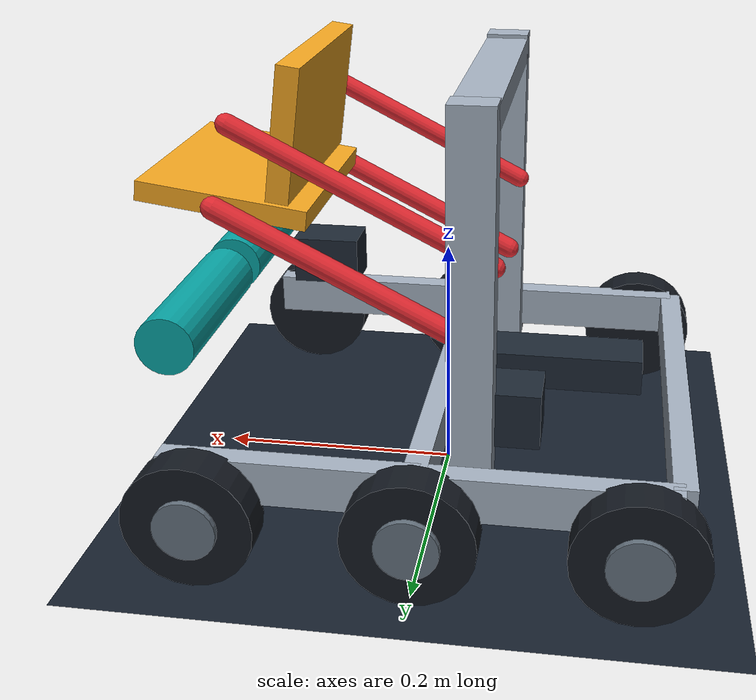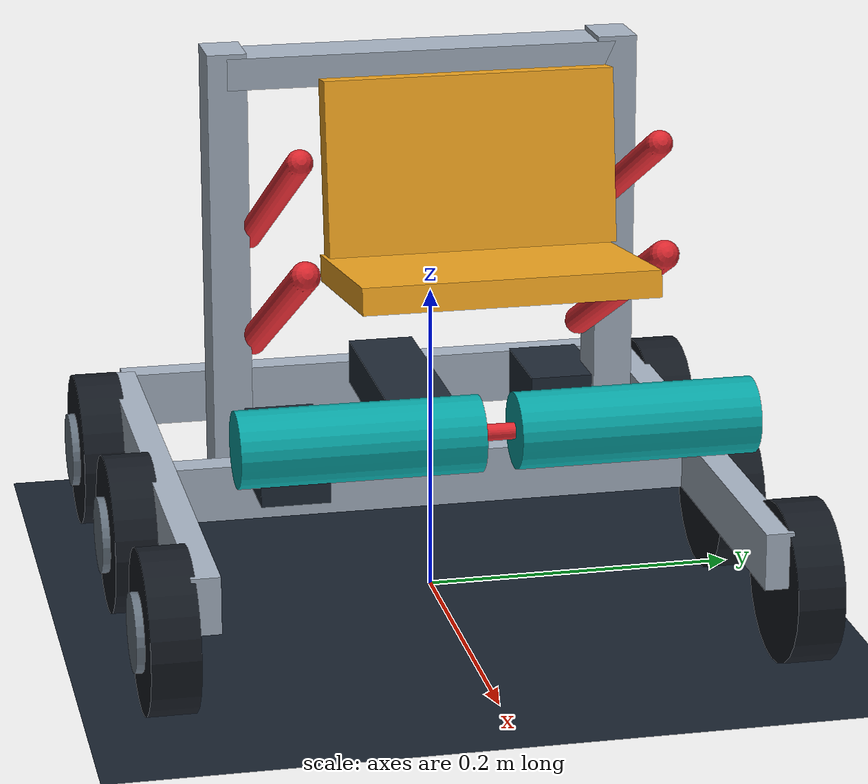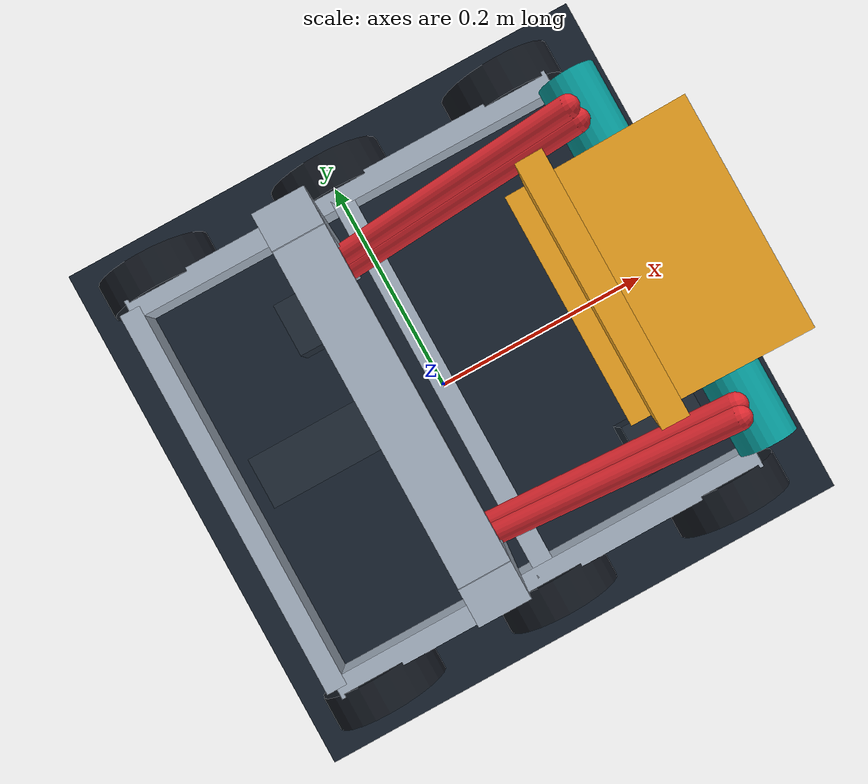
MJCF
<mujoco model="Open-Bay Four-Bar Pin Cradle"><compiler angle="degree" /><visual><global offwidth="800" offheight="600" /><quality offsamples="0" /><headlight ambient=".45 .45 .45" /></visual><worldbody><light pos="0 -1 3" castshadow="false" /><geom type="plane" size="2 2 .1" rgba=".09 .13 .18 1" /><geom type="box" pos="0 -0.175 0.0758" size="0.195 0.009 0.018" euler="0 0 0" rgba=".65 .7 .76 1" contype="0" conaffinity="0" /><geom type="box" pos="0 0.175 0.0758" size="0.195 0.009 0.018" euler="0 0 0" rgba=".65 .7 .76 1" contype="0" conaffinity="0" /><geom type="box" pos="-0.195 0 0.0758" size="0.009 0.175 0.018" euler="0 0 0" rgba=".65 .7 .76 1" contype="0" conaffinity="0" /><geom type="box" pos="0 0 0.0758" size="0.009 0.175 0.018" euler="0 0 0" rgba=".65 .7 .76 1" contype="0" conaffinity="0" /><geom type="cylinder" pos="-0.165 -0.19599999999999998 0.0508" size="0.0508 0.015" euler="90 0 0" rgba=".08 .1 .13 1" contype="0" conaffinity="0" /><geom type="cylinder" pos="-0.165 -0.213 0.0508" size="0.024384 0.003" euler="90 0 0" rgba=".4 .45 .5 1" contype="0" conaffinity="0" /><geom type="cylinder" pos="0.0 -0.19599999999999998 0.0508" size="0.0508 0.015" euler="90 0 0" rgba=".08 .1 .13 1" contype="0" conaffinity="0" /><geom type="cylinder" pos="0.0 -0.213 0.0508" size="0.024384 0.003" euler="90 0 0" rgba=".4 .45 .5 1" contype="0" conaffinity="0" /><geom type="cylinder" pos="0.165 -0.19599999999999998 0.0508" size="0.0508 0.015" euler="90 0 0" rgba=".08 .1 .13 1" contype="0" conaffinity="0" /><geom type="cylinder" pos="0.165 -0.213 0.0508" size="0.024384 0.003" euler="90 0 0" rgba=".4 .45 .5 1" contype="0" conaffinity="0" /><geom type="cylinder" pos="-0.165 0.19599999999999998 0.0508" size="0.0508 0.015" euler="90 0 0" rgba=".08 .1 .13 1" contype="0" conaffinity="0" /><geom type="cylinder" pos="-0.165 0.213 0.0508" size="0.024384 0.003" euler="90 0 0" rgba=".4 .45 .5 1" contype="0" conaffinity="0" /><geom type="cylinder" pos="0.0 0.19599999999999998 0.0508" size="0.0508 0.015" euler="90 0 0" rgba=".08 .1 .13 1" contype="0" conaffinity="0" /><geom type="cylinder" pos="0.0 0.213 0.0508" size="0.024384 0.003" euler="90 0 0" rgba=".4 .45 .5 1" contype="0" conaffinity="0" /><geom type="cylinder" pos="0.165 0.19599999999999998 0.0508" size="0.0508 0.015" euler="90 0 0" rgba=".08 .1 .13 1" contype="0" conaffinity="0" /><geom type="cylinder" pos="0.165 0.213 0.0508" size="0.024384 0.003" euler="90 0 0" rgba=".4 .45 .5 1" contype="0" conaffinity="0" /><geom type="box" pos="-0.095 0.0 0.1008" size="0.07 0.022 0.015" euler="0 0 0" rgba=".12 .16 .21 1" contype="0" conaffinity="0" /><geom type="box" pos="-0.035 0.125 0.205" size="0.0175 0.0125 0.15" euler="0.0 0.0 0.0" rgba=".65 .7 .76 1" contype="0" conaffinity="0" /><geom type="box" pos="-0.035 -0.125 0.205" size="0.0175 0.0125 0.15" euler="0.0 0.0 0.0" rgba=".65 .7 .76 1" contype="0" conaffinity="0" /><geom type="box" pos="-0.035 0.0 0.342" size="0.0175 0.125 0.01" euler="0.0 0.0 0.0" rgba=".65 .7 .76 1" contype="0" conaffinity="0" /><geom type="capsule" pos="0.06 0.108 0.212" size="0.009 0.1135" euler="0.0 63.0 0.0" rgba=".87 .16 .19 1" contype="0" conaffinity="0" /><geom type="capsule" pos="0.06 -0.108 0.212" size="0.009 0.1135" euler="0.0 63.0 0.0" rgba=".87 .16 .19 1" contype="0" conaffinity="0" /><geom type="capsule" pos="0.048 0.108 0.278" size="0.008 0.10949999999999999" euler="0.0 63.0 0.0" rgba=".87 .16 .19 1" contype="0" conaffinity="0" /><geom type="capsule" pos="0.048 -0.108 0.278" size="0.008 0.10949999999999999" euler="0.0 63.0 0.0" rgba=".87 .16 .19 1" contype="0" conaffinity="0" /><geom type="box" pos="0.163 0.0 0.258" size="0.0675 0.0875 0.008" euler="0.0 -8.0 0.0" rgba=".96 .66 .13 1" contype="0" conaffinity="0" /><geom type="box" pos="0.111 0.0 0.314" size="0.009 0.0875 0.0525" euler="0.0 -8.0 0.0" rgba=".96 .66 .13 1" contype="0" conaffinity="0" /><geom type="cylinder" pos="0.19 0.083 0.17" size="0.023 0.0725" euler="90.0 0.0 0.0" rgba=".03 .65 .65 1" contype="0" conaffinity="0" /><geom type="cylinder" pos="0.19 -0.083 0.17" size="0.023 0.0725" euler="90.0 0.0 0.0" rgba=".03 .65 .65 1" contype="0" conaffinity="0" /><geom type="cylinder" pos="0.19 0.0 0.17" size="0.005 0.1025" euler="90.0 0.0 0.0" rgba=".87 .16 .19 1" contype="0" conaffinity="0" /><geom type="box" pos="-0.055 0.095 0.106" size="0.0325 0.0225 0.0225" euler="0.0 0.0 0.0" rgba=".12 .16 .21 1" contype="0" conaffinity="0" /><geom type="box" pos="0.13 -0.115 0.143" size="0.03 0.021 0.021" euler="0.0 0.0 0.0" rgba=".12 .16 .21 1" contype="0" conaffinity="0" /></worldbody></mujoco>
